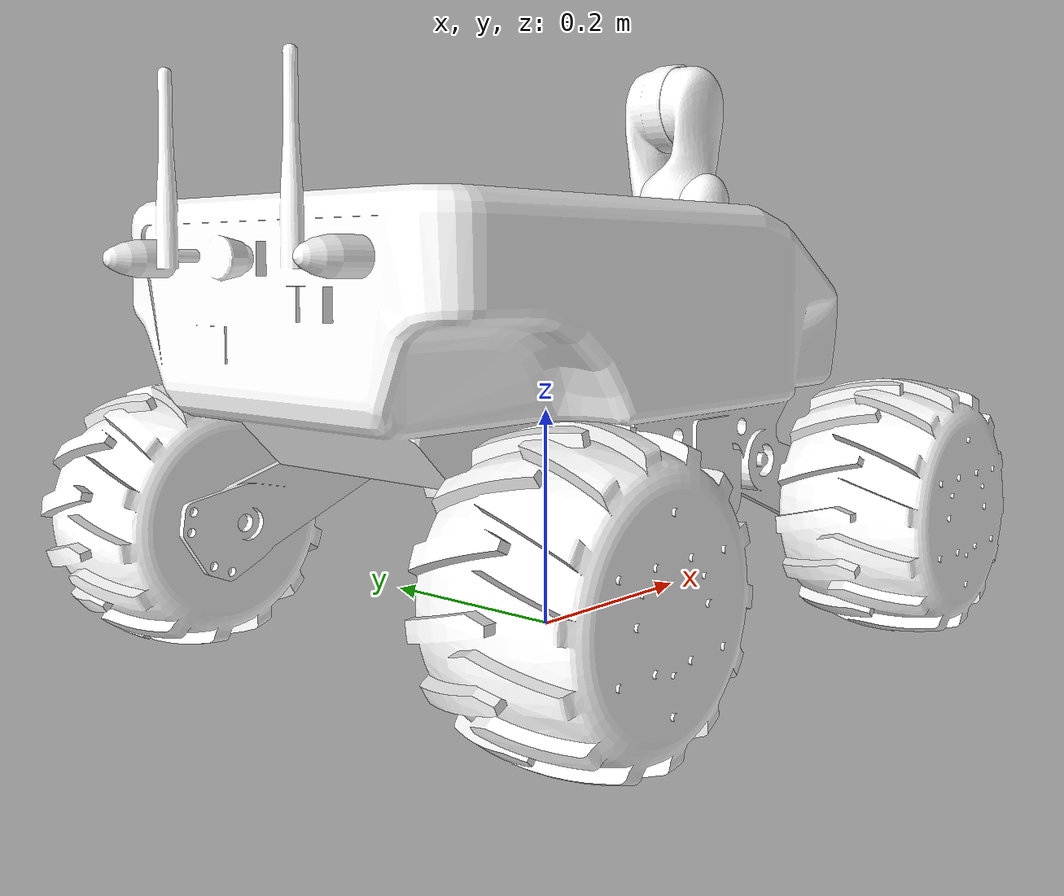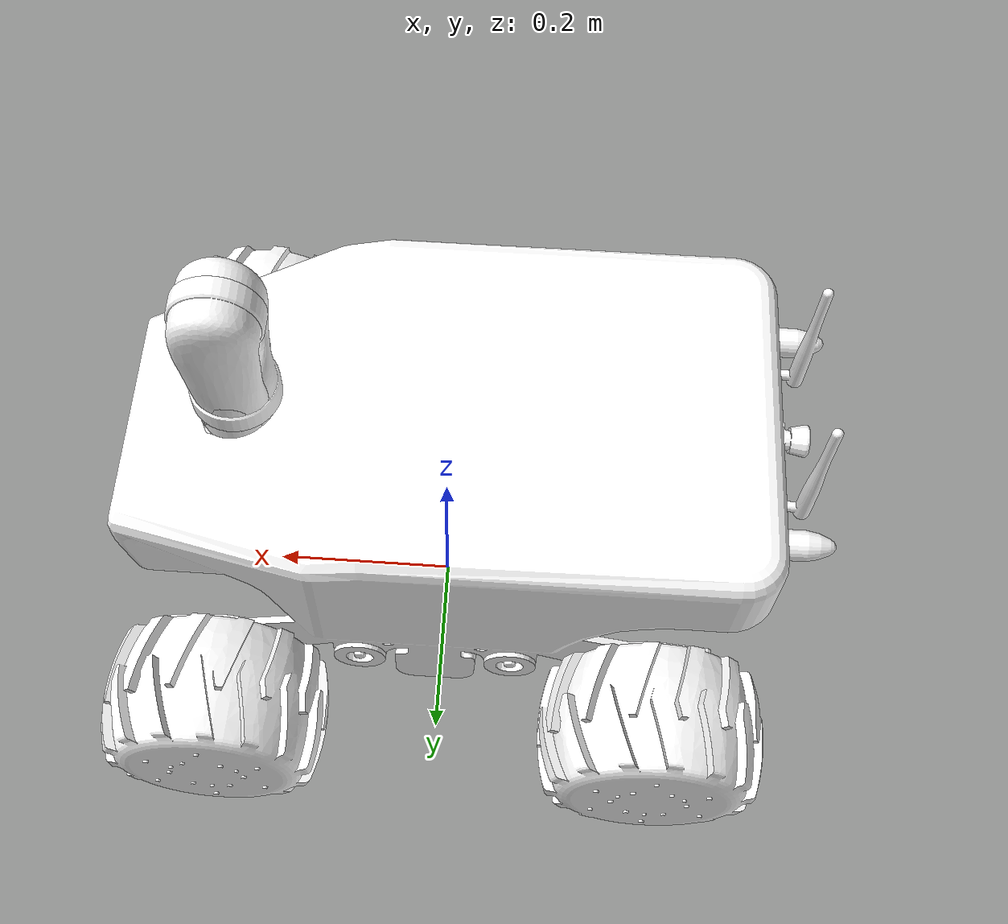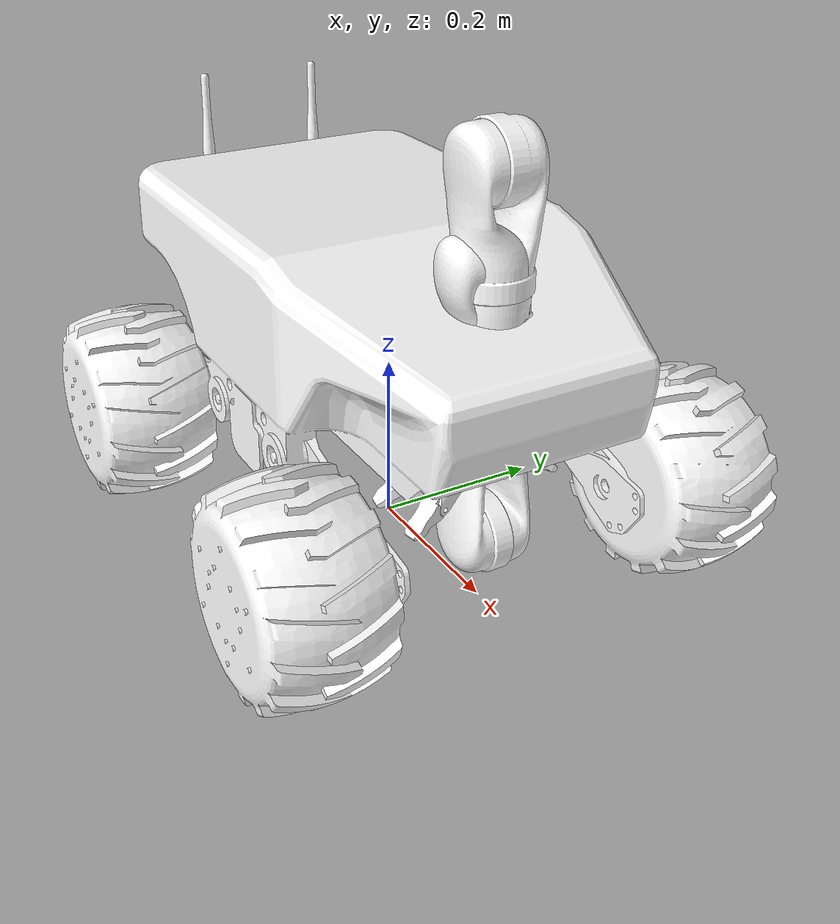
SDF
<sdf version='1.9'>
  <model name='lunalab_summit_xl_gen'>
    <link name='robot_summit_xl_base_footprint'>
      <inertial>
        <pose>-0.02248740267069087 -1.300333043775997e-05 0.2679397160647256 0 0 0</pose>
        <mass>50.467840000000002</mass>
        <inertia>
          <ixx>0.88115438114759082</ixx>
          <ixy>-0.00019287219030404251</ixy>
          <ixz>0.091004230445435486</ixz>
          <iyy>1.767171998090457</iyy>
          <iyz>2.9151916568713389e-05</iyz>
          <izz>1.926810537170516</izz>
        </inertia>
      </inertial>
      <collision name='robot_summit_xl_base_footprint_fixed_joint_lump__robot_summit_xl_base_link_collision'>
        <pose>0 0 0.11 0 0 0</pose>
        <geometry>
          <mesh>
            <scale>1 1 1</scale>
            <uri>meshes/summit_xl/collision/summit_xl_chassis.stl</uri>
          </mesh>
        </geometry>
        <surface>
          <contact>
            <ode/>
          </contact>
          <friction>
            <ode/>
          </friction>
        </surface>
      </collision>
      <collision name='robot_summit_xl_base_footprint_fixed_joint_lump__robot_j2s7s300_link_base_collision_1'>
        <pose>0.204 0 0.22 0 0 0</pose>
        <geometry>
          <mesh>
            <scale>1 1 1</scale>
            <uri>meshes/kinova/collision/base.stl</uri>
          </mesh>
        </geometry>
        <surface>
          <contact>
            <ode/>
          </contact>
          <friction>
            <ode>
              <mu>0.90000000000000002</mu>
              <mu2>0.90000000000000002</mu2>
            </ode>
          </friction>
        </surface>
      </collision>
      <visual name='robot_summit_xl_base_footprint_fixed_joint_lump__robot_summit_xl_base_link_visual'>
        <pose>0 0 0.11 0 0 0</pose>
        <geometry>
          <mesh>
            <scale>1 1 1</scale>
            <uri>meshes/summit_xl/visual/summit_xl_chassis.dae</uri>
          </mesh>
        </geometry>
        <material>
          <diffuse>1 1 1 1</diffuse>
          <specular>1 1 1 1</specular>
          <pbr>
            <metal>
              <albedo_map>materials/textures/summit_xl/chassis_albedo.png</albedo_map>
              <roughness_map>materials/textures/summit_xl/chassis_roughness.png</roughness_map>
              <metalness_map>materials/textures/summit_xl/chassis_metalness.png</metalness_map>
            </metal>
          </pbr>
        </material>
      </visual>
      <visual name='robot_summit_xl_base_footprint_fixed_joint_lump__robot_j2s7s300_link_base_visual_1'>
        <pose>0.204 0 0.22 0 0 0</pose>
        <geometry>
          <mesh>
            <scale>1 1 1</scale>
            <uri>meshes/kinova/visual/base.dae</uri>
          </mesh>
        </geometry>
        <material>
          <diffuse>1 1 1 1</diffuse>
          <specular>1 1 1 1</specular>
          <pbr>
            <metal>
              <albedo_map>materials/textures/kinova/kinova_gen2_albedo.png</albedo_map>
              <roughness_map>materials/textures/kinova/kinova_gen2_roughness.png</roughness_map>
              <metalness_map>materials/textures/kinova/kinova_gen2_metalness.png</metalness_map>
            </metal>
          </pbr>
        </material>
      </visual>
    </link>
    <joint name='robot_j2s7s300_joint_1' type='revolute'>
      <pose relative_to='robot_summit_xl_base_footprint'>0.204 0 0.37675 3.141592653589793 1.224646799147353e-16 3.141592653589793</pose>
      <parent>robot_summit_xl_base_footprint</parent>
      <child>robot_j2s7s300_link_1</child>
      <axis>
        <xyz>0 0 1</xyz>
        <limit>
          <lower>-6.2831853071795862</lower>
          <upper>6.2831853071795862</upper>
          <effort>40</effort>
          <velocity>0.62831853071795862</velocity>
        </limit>
        <dynamics>
          <damping>15</damping>
          <friction>0.5</friction>
          <spring_reference>0</spring_reference>
          <spring_stiffness>0</spring_stiffness>
        </dynamics>
      </axis>
    </joint>
    <link name='robot_j2s7s300_link_1'>
      <pose relative_to='robot_j2s7s300_joint_1'>0 0 0 0 0 0</pose>
      <inertial>
        <pose>0 -0.002 -0.0605 0 0 0</pose>
        <mass>0.74770000000000003</mass>
        <inertia>
          <ixx>0.001520323333333333</ixx>
          <ixy>0</ixy>
          <ixz>0</ixz>
          <iyy>0.001520323333333333</iyy>
          <iyz>0</iyz>
          <izz>0.00059816000000000003</izz>
        </inertia>
      </inertial>
      <collision name='robot_j2s7s300_link_1_collision'>
        <pose>0 0 0 0 0 0</pose>
        <geometry>
          <mesh>
            <scale>1 1 1</scale>
            <uri>meshes/kinova/collision/shoulder.stl</uri>
          </mesh>
        </geometry>
        <surface>
          <contact>
            <ode/>
          </contact>
          <friction>
            <ode>
              <mu>0.90000000000000002</mu>
              <mu2>0.90000000000000002</mu2>
            </ode>
          </friction>
        </surface>
      </collision>
      <visual name='robot_j2s7s300_link_1_visual'>
        <pose>0 0 0 0 0 0</pose>
        <geometry>
          <mesh>
            <scale>1 1 1</scale>
            <uri>meshes/kinova/visual/shoulder.dae</uri>
          </mesh>
        </geometry>
        <material>
          <diffuse>1 1 1 1</diffuse>
          <specular>1 1 1 1</specular>
          <pbr>
            <metal>
              <albedo_map>materials/textures/kinova/kinova_gen2_albedo.png</albedo_map>
              <roughness_map>materials/textures/kinova/kinova_gen2_roughness.png</roughness_map>
              <metalness_map>materials/textures/kinova/kinova_gen2_metalness.png</metalness_map>
            </metal>
          </pbr>
        </material>
      </visual>
    </link>
    <joint name='robot_j2s7s300_joint_2' type='revolute'>
      <pose relative_to='robot_j2s7s300_link_1'>0 0.0016 -0.11875 -1.570796326794896 0 3.141592653589793</pose>
      <parent>robot_j2s7s300_link_1</parent>
      <child>robot_j2s7s300_link_2</child>
      <axis>
        <xyz>0 0 1</xyz>
        <limit>
          <lower>0.82030474843733492</lower>
          <upper>5.4628805587422509</upper>
          <effort>40</effort>
          <velocity>0.62831853071795862</velocity>
        </limit>
        <dynamics>
          <damping>16</damping>
          <friction>0.90000000000000002</friction>
          <spring_reference>0</spring_reference>
          <spring_stiffness>0</spring_stiffness>
        </dynamics>
      </axis>
    </joint>
    <link name='robot_j2s7s300_link_2'>
      <pose relative_to='robot_j2s7s300_joint_2'>0 0 0 0 0 0</pose>
      <inertial>
        <pose>0 -0.103563213 0 0 0 0</pose>
        <mass>0.84470000000000001</mass>
        <inertia>
          <ixx>0.0024707474999999999</ixx>
          <ixy>0</ixy>
          <ixz>0</ixz>
          <iyy>0.00038011499999999999</iyy>
          <iyz>0</iyz>
          <izz>0.0024707474999999999</izz>
        </inertia>
      </inertial>
      <collision name='robot_j2s7s300_link_2_collision'>
        <pose>0 0 0 0 0 0</pose>
        <geometry>
          <mesh>
            <scale>1 1 1</scale>
            <uri>meshes/kinova/collision/arm_half_1.stl</uri>
          </mesh>
        </geometry>
        <surface>
          <contact>
            <ode/>
          </contact>
          <friction>
            <ode>
              <mu>0.90000000000000002</mu>
              <mu2>0.90000000000000002</mu2>
            </ode>
          </friction>
        </surface>
      </collision>
      <visual name='robot_j2s7s300_link_2_visual'>
        <pose>0 0 0 0 0 0</pose>
        <geometry>
          <mesh>
            <scale>1 1 1</scale>
            <uri>meshes/kinova/visual/arm_half_1.dae</uri>
          </mesh>
        </geometry>
        <material>
          <diffuse>1 1 1 1</diffuse>
          <specular>1 1 1 1</specular>
          <pbr>
            <metal>
              <albedo_map>materials/textures/kinova/kinova_gen2_albedo.png</albedo_map>
              <roughness_map>materials/textures/kinova/kinova_gen2_roughness.png</roughness_map>
              <metalness_map>materials/textures/kinova/kinova_gen2_metalness.png</metalness_map>
            </metal>
          </pbr>
        </material>
      </visual>
    </link>
    <joint name='robot_j2s7s300_joint_3' type='revolute'>
      <pose relative_to='robot_j2s7s300_link_2'>0 -0.205 0 -1.570796326794896 0 0</pose>
      <parent>robot_j2s7s300_link_2</parent>
      <child>robot_j2s7s300_link_3</child>
      <axis>
        <xyz>0 0 1</xyz>
        <limit>
          <lower>-6.2831853071795862</lower>
          <upper>6.2831853071795862</upper>
          <effort>40</effort>
          <velocity>0.62831853071795862</velocity>
        </limit>
        <dynamics>
          <damping>12</damping>
          <friction>0.80000000000000004</friction>
          <spring_reference>0</spring_reference>
          <spring_stiffness>0</spring_stiffness>
        </dynamics>
      </axis>
    </joint>
    <link name='robot_j2s7s300_link_3'>
      <pose relative_to='robot_j2s7s300_joint_3'>0 0 0 0 0 0</pose>
      <inertial>
        <pose>0 0 -0.1022447445 0 0 0</pose>
        <mass>0.84470000000000001</mass>
        <inertia>
          <ixx>0.0024707474999999999</ixx>
          <ixy>0</ixy>
          <ixz>0</ixz>
          <iyy>0.0024707474999999999</iyy>
          <iyz>0</iyz>
          <izz>0.00038011499999999999</izz>
        </inertia>
      </inertial>
      <collision name='robot_j2s7s300_link_3_collision'>
        <pose>0 0 0 0 0 0</pose>
        <geometry>
          <mesh>
            <scale>1 1 1</scale>
            <uri>meshes/kinova/collision/arm_half_2.stl</uri>
          </mesh>
        </geometry>
        <surface>
          <contact>
            <ode/>
          </contact>
          <friction>
            <ode>
              <mu>0.90000000000000002</mu>
              <mu2>0.90000000000000002</mu2>
            </ode>
          </friction>
        </surface>
      </collision>
      <visual name='robot_j2s7s300_link_3_visual'>
        <pose>0 0 0 0 0 0</pose>
        <geometry>
          <mesh>
            <scale>1 1 1</scale>
            <uri>meshes/kinova/visual/arm_half_2.dae</uri>
          </mesh>
        </geometry>
        <material>
          <diffuse>1 1 1 1</diffuse>
          <specular>1 1 1 1</specular>
          <pbr>
            <metal>
              <albedo_map>materials/textures/kinova/kinova_gen2_albedo.png</albedo_map>
              <roughness_map>materials/textures/kinova/kinova_gen2_roughness.png</roughness_map>
              <metalness_map>materials/textures/kinova/kinova_gen2_metalness.png</metalness_map>
            </metal>
          </pbr>
        </material>
      </visual>
    </link>
    <joint name='robot_j2s7s300_joint_4' type='revolute'>
      <pose relative_to='robot_j2s7s300_link_3'>0 0 -0.205 1.570796326794896 0 3.141592653589793</pose>
      <parent>robot_j2s7s300_link_3</parent>
      <child>robot_j2s7s300_link_4</child>
      <axis>
        <xyz>0 0 1</xyz>
        <limit>
          <lower>0.52359877559829882</lower>
          <upper>5.7595865315812871</upper>
          <effort>40</effort>
          <velocity>0.62831853071795862</velocity>
        </limit>
        <dynamics>
          <damping>8</damping>
          <friction>0.55000000000000004</friction>
          <spring_reference>0</spring_reference>
          <spring_stiffness>0</spring_stiffness>
        </dynamics>
      </axis>
    </joint>
    <link name='robot_j2s7s300_link_4'>
      <pose relative_to='robot_j2s7s300_joint_4'>0 0 0 0 0 0</pose>
      <inertial>
        <pose>0 0.081 -0.0086 0 0 0</pose>
        <mass>0.67630000000000001</mass>
        <inertia>
          <ixx>0.00142023</ixx>
          <ixy>0</ixy>
          <ixz>0</ixz>
          <iyy>0.00030433499999999998</iyy>
          <iyz>0</iyz>
          <izz>0.00142023</izz>
        </inertia>
      </inertial>
      <collision name='robot_j2s7s300_link_4_collision'>
        <pose>0 0 0 0 0 0</pose>
        <geometry>
          <mesh>
            <scale>1 1 1</scale>
            <uri>meshes/kinova/collision/forearm.stl</uri>
          </mesh>
        </geometry>
        <surface>
          <contact>
            <ode/>
          </contact>
          <friction>
            <ode>
              <mu>0.90000000000000002</mu>
              <mu2>0.90000000000000002</mu2>
            </ode>
          </friction>
        </surface>
      </collision>
      <visual name='robot_j2s7s300_link_4_visual'>
        <pose>0 0 0 0 0 0</pose>
        <geometry>
          <mesh>
            <scale>1 1 1</scale>
            <uri>meshes/kinova/visual/forearm.dae</uri>
          </mesh>
        </geometry>
        <material>
          <diffuse>1 1 1 1</diffuse>
          <specular>1 1 1 1</specular>
          <pbr>
            <metal>
              <albedo_map>materials/textures/kinova/kinova_gen2_albedo.png</albedo_map>
              <roughness_map>materials/textures/kinova/kinova_gen2_roughness.png</roughness_map>
              <metalness_map>materials/textures/kinova/kinova_gen2_metalness.png</metalness_map>
            </metal>
          </pbr>
        </material>
      </visual>
    </link>
    <joint name='robot_j2s7s300_joint_5' type='revolute'>
      <pose relative_to='robot_j2s7s300_link_4'>0 0.2073 -0.0114 -1.570796326794896 0 3.141592653589793</pose>
      <parent>robot_j2s7s300_link_4</parent>
      <child>robot_j2s7s300_link_5</child>
      <axis>
        <xyz>0 0 1</xyz>
        <limit>
          <lower>-6.2831853071795862</lower>
          <upper>6.2831853071795862</upper>
          <effort>20</effort>
          <velocity>0.83775804095727813</velocity>
        </limit>
        <dynamics>
          <damping>6.5</damping>
          <friction>0.34999999999999998</friction>
          <spring_reference>0</spring_reference>
          <spring_stiffness>0</spring_stiffness>
        </dynamics>
      </axis>
    </joint>
    <link name='robot_j2s7s300_link_5'>
      <pose relative_to='robot_j2s7s300_joint_5'>0 0 0 0 0 0</pose>
      <inertial>
        <pose>0 0.0028848942 -0.0541932613 0 0 0</pose>
        <mass>0.46300000000000002</mass>
        <inertia>
          <ixx>0.00043213333333333339</ixx>
          <ixy>0</ixy>
          <ixz>0</ixz>
          <iyy>0.00043213333333333339</iyy>
          <iyz>0</iyz>
          <izz>9.2600000000000015e-05</izz>
        </inertia>
      </inertial>
      <collision name='robot_j2s7s300_link_5_collision'>
        <pose>0 0 0 0 0 0</pose>
        <geometry>
          <mesh>
            <scale>1 1 1</scale>
            <uri>meshes/kinova/collision/wrist_spherical_1.stl</uri>
          </mesh>
        </geometry>
        <surface>
          <contact>
            <ode/>
          </contact>
          <friction>
            <ode>
              <mu>0.90000000000000002</mu>
              <mu2>0.90000000000000002</mu2>
            </ode>
          </friction>
        </surface>
      </collision>
      <visual name='robot_j2s7s300_link_5_visual'>
        <pose>0 0 0 0 0 0</pose>
        <geometry>
          <mesh>
            <scale>1 1 1</scale>
            <uri>meshes/kinova/visual/wrist_spherical_1.dae</uri>
          </mesh>
        </geometry>
        <material>
          <diffuse>1 1 1 1</diffuse>
          <specular>1 1 1 1</specular>
          <pbr>
            <metal>
              <albedo_map>materials/textures/kinova/kinova_gen2_albedo.png</albedo_map>
              <roughness_map>materials/textures/kinova/kinova_gen2_roughness.png</roughness_map>
              <metalness_map>materials/textures/kinova/kinova_gen2_metalness.png</metalness_map>
            </metal>
          </pbr>
        </material>
      </visual>
    </link>
    <joint name='robot_j2s7s300_joint_6' type='revolute'>
      <pose relative_to='robot_j2s7s300_link_5'>0 0 -0.10375 1.570796326794896 0 3.141592653589793</pose>
      <parent>robot_j2s7s300_link_5</parent>
      <child>robot_j2s7s300_link_6</child>
      <axis>
        <xyz>0 0 1</xyz>
        <limit>
          <lower>1.134464013796314</lower>
          <upper>5.1487212933832716</upper>
          <effort>20</effort>
          <velocity>0.83775804095727813</velocity>
        </limit>
        <dynamics>
          <damping>5.5</damping>
          <friction>0.25</friction>
          <spring_reference>0</spring_reference>
          <spring_stiffness>0</spring_stiffness>
        </dynamics>
      </axis>
    </joint>
    <link name='robot_j2s7s300_link_6'>
      <pose relative_to='robot_j2s7s300_joint_6'>0 0 0 0 0 0</pose>
      <inertial>
        <pose>0 0.0497208855 -0.0028562765 0 0 0</pose>
        <mass>0.46300000000000002</mass>
        <inertia>
          <ixx>0.00043213333333333339</ixx>
          <ixy>0</ixy>
          <ixz>0</ixz>
          <iyy>9.2600000000000015e-05</iyy>
          <iyz>0</iyz>
          <izz>0.00043213333333333339</izz>
        </inertia>
      </inertial>
      <collision name='robot_j2s7s300_link_6_collision'>
        <pose>0 0 0 0 0 0</pose>
        <geometry>
          <mesh>
            <scale>1 1 1</scale>
            <uri>meshes/kinova/collision/wrist_spherical_2.stl</uri>
          </mesh>
        </geometry>
        <surface>
          <contact>
            <ode/>
          </contact>
          <friction>
            <ode>
              <mu>0.90000000000000002</mu>
              <mu2>0.90000000000000002</mu2>
            </ode>
          </friction>
        </surface>
      </collision>
      <visual name='robot_j2s7s300_link_6_visual'>
        <pose>0 0 0 0 0 0</pose>
        <geometry>
          <mesh>
            <scale>1 1 1</scale>
            <uri>meshes/kinova/visual/wrist_spherical_2.dae</uri>
          </mesh>
        </geometry>
        <material>
          <diffuse>1 1 1 1</diffuse>
          <specular>1 1 1 1</specular>
          <pbr>
            <metal>
              <albedo_map>materials/textures/kinova/kinova_gen2_albedo.png</albedo_map>
              <roughness_map>materials/textures/kinova/kinova_gen2_roughness.png</roughness_map>
              <metalness_map>materials/textures/kinova/kinova_gen2_metalness.png</metalness_map>
            </metal>
          </pbr>
        </material>
      </visual>
    </link>
    <joint name='robot_j2s7s300_joint_7' type='revolute'>
      <pose relative_to='robot_j2s7s300_link_6'>0 0.10375 0 -1.570796326794896 0 3.141592653589793</pose>
      <parent>robot_j2s7s300_link_6</parent>
      <child>robot_j2s7s300_link_7</child>
      <axis>
        <xyz>0 0 1</xyz>
        <limit>
          <lower>-6.2831853071795862</lower>
          <upper>6.2831853071795862</upper>
          <effort>20</effort>
          <velocity>0.83775804095727813</velocity>
        </limit>
        <dynamics>
          <damping>4.5</damping>
          <friction>0.20000000000000001</friction>
          <spring_reference>0</spring_reference>
          <spring_stiffness>0</spring_stiffness>
        </dynamics>
      </axis>
    </joint>
    <link name='robot_j2s7s300_link_7'>
      <pose relative_to='robot_j2s7s300_joint_7'>0 0 0 0 0 0</pose>
      <inertial>
        <pose>0 0 -0.06 0 0 0</pose>
        <mass>0.98999999999999999</mass>
        <inertia>
          <ixx>0.0003453249999999999</ixx>
          <ixy>0</ixy>
          <ixz>0</ixz>
          <iyy>0.0003453249999999999</iyy>
          <iyz>0</iyz>
          <izz>0.00058159999999999993</izz>
        </inertia>
      </inertial>
      <collision name='robot_j2s7s300_link_7_collision'>
        <pose>0 0 0 0 0 0</pose>
        <geometry>
          <mesh>
            <scale>1 1 1</scale>
            <uri>meshes/kinova/collision/hand_3finger.stl</uri>
          </mesh>
        </geometry>
        <surface>
          <contact>
            <ode/>
          </contact>
          <friction>
            <ode>
              <mu>0.90000000000000002</mu>
              <mu2>0.90000000000000002</mu2>
            </ode>
          </friction>
        </surface>
      </collision>
      <visual name='robot_j2s7s300_link_7_visual'>
        <pose>0 0 0 0 0 0</pose>
        <geometry>
          <mesh>
            <scale>1 1 1</scale>
            <uri>meshes/kinova/visual/hand_3finger.dae</uri>
          </mesh>
        </geometry>
        <material>
          <diffuse>1 1 1 1</diffuse>
          <specular>1 1 1 1</specular>
          <pbr>
            <metal>
              <albedo_map>materials/textures/kinova/kinova_gen2_albedo.png</albedo_map>
              <roughness_map>materials/textures/kinova/kinova_gen2_roughness.png</roughness_map>
              <metalness_map>materials/textures/kinova/kinova_gen2_metalness.png</metalness_map>
            </metal>
          </pbr>
        </material>
      </visual>
    </link>
    <joint name='robot_j2s7s300_joint_finger_1' type='revolute'>
      <pose relative_to='robot_j2s7s300_link_7'>0.002786 0.03126 -0.114668 -1.704955772138421 0.6492624817418906 1.672898088036564</pose>
      <parent>robot_j2s7s300_link_7</parent>
      <child>robot_j2s7s300_link_finger_1</child>
      <axis>
        <xyz>0 0 1</xyz>
        <limit>
          <lower>0</lower>
          <upper>1.51</upper>
          <effort>5</effort>
          <velocity>1</velocity>
        </limit>
        <dynamics>
          <damping>0.29999999999999999</damping>
          <friction>0.01</friction>
          <spring_reference>0</spring_reference>
          <spring_stiffness>0</spring_stiffness>
        </dynamics>
      </axis>
    </joint>
    <link name='robot_j2s7s300_link_finger_1'>
      <pose relative_to='robot_j2s7s300_joint_finger_1'>0 0 0 0 0 0</pose>
      <inertial>
        <pose>0.022 0 0 0 0 0</pose>
        <mass>0.01</mass>
        <inertia>
          <ixx>7.8999999999999995e-07</ixx>
          <ixy>0</ixy>
          <ixz>0</ixz>
          <iyy>7.8999999999999995e-07</iyy>
          <iyz>0</iyz>
          <izz>8.0000000000000002e-08</izz>
        </inertia>
      </inertial>
      <collision name='robot_j2s7s300_link_finger_1_collision'>
        <pose>0 0 0 0 0 0</pose>
        <geometry>
          <mesh>
            <scale>1 1 1</scale>
            <uri>meshes/kinova/collision/finger_proximal.stl</uri>
          </mesh>
        </geometry>
        <surface>
          <contact>
            <ode/>
          </contact>
          <friction>
            <ode>
              <mu>1.6000000000000001</mu>
              <mu2>1.6000000000000001</mu2>
            </ode>
          </friction>
        </surface>
      </collision>
      <visual name='robot_j2s7s300_link_finger_1_visual'>
        <pose>0 0 0 0 0 0</pose>
        <geometry>
          <mesh>
            <scale>1 1 1</scale>
            <uri>meshes/kinova/visual/finger_proximal.dae</uri>
          </mesh>
        </geometry>
        <material>
          <diffuse>1 1 1 1</diffuse>
          <specular>1 1 1 1</specular>
          <pbr>
            <metal>
              <albedo_map>materials/textures/kinova/kinova_gen2_albedo.png</albedo_map>
              <roughness_map>materials/textures/kinova/kinova_gen2_roughness.png</roughness_map>
              <metalness_map>materials/textures/kinova/kinova_gen2_metalness.png</metalness_map>
            </metal>
          </pbr>
        </material>
      </visual>
    </link>
    <joint name='robot_j2s7s300_joint_finger_tip_1' type='revolute'>
      <pose relative_to='robot_j2s7s300_link_finger_1'>0.044 -0.003 0 0 0 0</pose>
      <parent>robot_j2s7s300_link_finger_1</parent>
      <child>robot_j2s7s300_link_finger_tip_1</child>
      <axis>
        <xyz>0 0 1</xyz>
        <limit>
          <lower>0</lower>
          <upper>2</upper>
          <effort>2</effort>
          <velocity>1</velocity>
        </limit>
        <dynamics>
          <damping>0.0050000000000000001</damping>
          <friction>0.00025000000000000001</friction>
          <spring_reference>0</spring_reference>
          <spring_stiffness>1.25</spring_stiffness>
        </dynamics>
      </axis>
      <physics>
        <ode>
          <limit>
            <cfm>0</cfm>
            <erp>0.20000000000000001</erp>
          </limit>
        </ode>
      </physics>
    </joint>
    <link name='robot_j2s7s300_link_finger_tip_1'>
      <pose relative_to='robot_j2s7s300_joint_finger_tip_1'>0 0 0 0 0 0</pose>
      <inertial>
        <pose>0.022 0 0 0 0 0</pose>
        <mass>0.01</mass>
        <inertia>
          <ixx>7.8999999999999995e-07</ixx>
          <ixy>0</ixy>
          <ixz>0</ixz>
          <iyy>7.8999999999999995e-07</iyy>
          <iyz>0</iyz>
          <izz>8.0000000000000002e-08</izz>
        </inertia>
      </inertial>
      <collision name='robot_j2s7s300_link_finger_tip_1_collision'>
        <pose>0 0 0 0 0 0</pose>
        <geometry>
          <mesh>
            <scale>1 1 1</scale>
            <uri>meshes/kinova/collision/finger_distal.stl</uri>
          </mesh>
        </geometry>
        <surface>
          <contact>
            <ode/>
          </contact>
          <friction>
            <ode>
              <mu>1.6000000000000001</mu>
              <mu2>1.6000000000000001</mu2>
            </ode>
          </friction>
        </surface>
      </collision>
      <visual name='robot_j2s7s300_link_finger_tip_1_visual'>
        <pose>0 0 0 0 0 0</pose>
        <geometry>
          <mesh>
            <scale>1 1 1</scale>
            <uri>meshes/kinova/visual/finger_distal.dae</uri>
          </mesh>
        </geometry>
        <material>
          <diffuse>1 1 1 1</diffuse>
          <specular>1 1 1 1</specular>
          <pbr>
            <metal>
              <albedo_map>materials/textures/kinova/kinova_gen2_albedo.png</albedo_map>
              <roughness_map>materials/textures/kinova/kinova_gen2_roughness.png</roughness_map>
              <metalness_map>materials/textures/kinova/kinova_gen2_metalness.png</metalness_map>
            </metal>
          </pbr>
        </material>
      </visual>
      <self_collide>true</self_collide>
    </link>
    <joint name='robot_j2s7s300_joint_finger_2' type='revolute'>
      <pose relative_to='robot_j2s7s300_link_7'>0.022256 -0.027073 -0.114668 -1.570796326794897 0.6492624817418907 -1.386140491933897</pose>
      <parent>robot_j2s7s300_link_7</parent>
      <child>robot_j2s7s300_link_finger_2</child>
      <axis>
        <xyz>0 0 1</xyz>
        <limit>
          <lower>0</lower>
          <upper>1.51</upper>
          <effort>5</effort>
          <velocity>1</velocity>
        </limit>
        <dynamics>
          <damping>0.29999999999999999</damping>
          <friction>0.01</friction>
          <spring_reference>0</spring_reference>
          <spring_stiffness>0</spring_stiffness>
        </dynamics>
      </axis>
    </joint>
    <link name='robot_j2s7s300_link_finger_2'>
      <pose relative_to='robot_j2s7s300_joint_finger_2'>0 0 0 0 0 0</pose>
      <inertial>
        <pose>0.022 0 0 0 0 0</pose>
        <mass>0.01</mass>
        <inertia>
          <ixx>7.8999999999999995e-07</ixx>
          <ixy>0</ixy>
          <ixz>0</ixz>
          <iyy>7.8999999999999995e-07</iyy>
          <iyz>0</iyz>
          <izz>8.0000000000000002e-08</izz>
        </inertia>
      </inertial>
      <collision name='robot_j2s7s300_link_finger_2_collision'>
        <pose>0 0 0 0 0 0</pose>
        <geometry>
          <mesh>
            <scale>1 1 1</scale>
            <uri>meshes/kinova/collision/finger_proximal.stl</uri>
          </mesh>
        </geometry>
        <surface>
          <contact>
            <ode/>
          </contact>
          <friction>
            <ode>
              <mu>1.6000000000000001</mu>
              <mu2>1.6000000000000001</mu2>
            </ode>
          </friction>
        </surface>
      </collision>
      <visual name='robot_j2s7s300_link_finger_2_visual'>
        <pose>0 0 0 0 0 0</pose>
        <geometry>
          <mesh>
            <scale>1 1 1</scale>
            <uri>meshes/kinova/visual/finger_proximal.dae</uri>
          </mesh>
        </geometry>
        <material>
          <diffuse>1 1 1 1</diffuse>
          <specular>1 1 1 1</specular>
          <pbr>
            <metal>
              <albedo_map>materials/textures/kinova/kinova_gen2_albedo.png</albedo_map>
              <roughness_map>materials/textures/kinova/kinova_gen2_roughness.png</roughness_map>
              <metalness_map>materials/textures/kinova/kinova_gen2_metalness.png</metalness_map>
            </metal>
          </pbr>
        </material>
      </visual>
    </link>
    <joint name='robot_j2s7s300_joint_finger_tip_2' type='revolute'>
      <pose relative_to='robot_j2s7s300_link_finger_2'>0.044 -0.003 0 0 0 0</pose>
      <parent>robot_j2s7s300_link_finger_2</parent>
      <child>robot_j2s7s300_link_finger_tip_2</child>
      <axis>
        <xyz>0 0 1</xyz>
        <limit>
          <lower>0</lower>
          <upper>2</upper>
          <effort>2</effort>
          <velocity>1</velocity>
        </limit>
        <dynamics>
          <damping>0.0050000000000000001</damping>
          <friction>0.00025000000000000001</friction>
          <spring_reference>0</spring_reference>
          <spring_stiffness>1.25</spring_stiffness>
        </dynamics>
      </axis>
      <physics>
        <ode>
          <limit>
            <cfm>0</cfm>
            <erp>0.20000000000000001</erp>
          </limit>
        </ode>
      </physics>
    </joint>
    <link name='robot_j2s7s300_link_finger_tip_2'>
      <pose relative_to='robot_j2s7s300_joint_finger_tip_2'>0 0 0 0 0 0</pose>
      <inertial>
        <pose>0.022 0 0 0 0 0</pose>
        <mass>0.01</mass>
        <inertia>
          <ixx>7.8999999999999995e-07</ixx>
          <ixy>0</ixy>
          <ixz>0</ixz>
          <iyy>7.8999999999999995e-07</iyy>
          <iyz>0</iyz>
          <izz>8.0000000000000002e-08</izz>
        </inertia>
      </inertial>
      <collision name='robot_j2s7s300_link_finger_tip_2_collision'>
        <pose>0 0 0 0 0 0</pose>
        <geometry>
          <mesh>
            <scale>1 1 1</scale>
            <uri>meshes/kinova/collision/finger_distal.stl</uri>
          </mesh>
        </geometry>
        <surface>
          <contact>
            <ode/>
          </contact>
          <friction>
            <ode>
              <mu>1.6000000000000001</mu>
              <mu2>1.6000000000000001</mu2>
            </ode>
          </friction>
        </surface>
      </collision>
      <visual name='robot_j2s7s300_link_finger_tip_2_visual'>
        <pose>0 0 0 0 0 0</pose>
        <geometry>
          <mesh>
            <scale>1 1 1</scale>
            <uri>meshes/kinova/visual/finger_distal.dae</uri>
          </mesh>
        </geometry>
        <material>
          <diffuse>1 1 1 1</diffuse>
          <specular>1 1 1 1</specular>
          <pbr>
            <metal>
              <albedo_map>materials/textures/kinova/kinova_gen2_albedo.png</albedo_map>
              <roughness_map>materials/textures/kinova/kinova_gen2_roughness.png</roughness_map>
              <metalness_map>materials/textures/kinova/kinova_gen2_metalness.png</metalness_map>
            </metal>
          </pbr>
        </material>
      </visual>
      <self_collide>true</self_collide>
    </link>
    <joint name='robot_j2s7s300_joint_finger_3' type='revolute'>
      <pose relative_to='robot_j2s7s300_link_7'>-0.022256 -0.027073 -0.114668 -1.570796326794896 0.6492624817418907 -1.755452161655896</pose>
      <parent>robot_j2s7s300_link_7</parent>
      <child>robot_j2s7s300_link_finger_3</child>
      <axis>
        <xyz>0 0 1</xyz>
        <limit>
          <lower>0</lower>
          <upper>1.51</upper>
          <effort>5</effort>
          <velocity>1</velocity>
        </limit>
        <dynamics>
          <damping>0.29999999999999999</damping>
          <friction>0.01</friction>
          <spring_reference>0</spring_reference>
          <spring_stiffness>0</spring_stiffness>
        </dynamics>
      </axis>
    </joint>
    <link name='robot_j2s7s300_link_finger_3'>
      <pose relative_to='robot_j2s7s300_joint_finger_3'>0 0 0 0 0 0</pose>
      <inertial>
        <pose>0.022 0 0 0 0 0</pose>
        <mass>0.01</mass>
        <inertia>
          <ixx>7.8999999999999995e-07</ixx>
          <ixy>0</ixy>
          <ixz>0</ixz>
          <iyy>7.8999999999999995e-07</iyy>
          <iyz>0</iyz>
          <izz>8.0000000000000002e-08</izz>
        </inertia>
      </inertial>
      <collision name='robot_j2s7s300_link_finger_3_collision'>
        <pose>0 0 0 0 0 0</pose>
        <geometry>
          <mesh>
            <scale>1 1 1</scale>
            <uri>meshes/kinova/collision/finger_proximal.stl</uri>
          </mesh>
        </geometry>
        <surface>
          <contact>
            <ode/>
          </contact>
          <friction>
            <ode>
              <mu>1.6000000000000001</mu>
              <mu2>1.6000000000000001</mu2>
            </ode>
          </friction>
        </surface>
      </collision>
      <visual name='robot_j2s7s300_link_finger_3_visual'>
        <pose>0 0 0 0 0 0</pose>
        <geometry>
          <mesh>
            <scale>1 1 1</scale>
            <uri>meshes/kinova/visual/finger_proximal.dae</uri>
          </mesh>
        </geometry>
        <material>
          <diffuse>1 1 1 1</diffuse>
          <specular>1 1 1 1</specular>
          <pbr>
            <metal>
              <albedo_map>materials/textures/kinova/kinova_gen2_albedo.png</albedo_map>
              <roughness_map>materials/textures/kinova/kinova_gen2_roughness.png</roughness_map>
              <metalness_map>materials/textures/kinova/kinova_gen2_metalness.png</metalness_map>
            </metal>
          </pbr>
        </material>
      </visual>
    </link>
    <joint name='robot_j2s7s300_joint_finger_tip_3' type='revolute'>
      <pose relative_to='robot_j2s7s300_link_finger_3'>0.044 -0.003 0 0 0 0</pose>
      <parent>robot_j2s7s300_link_finger_3</parent>
      <child>robot_j2s7s300_link_finger_tip_3</child>
      <axis>
        <xyz>0 0 1</xyz>
        <limit>
          <lower>0</lower>
          <upper>2</upper>
          <effort>2</effort>
          <velocity>1</velocity>
        </limit>
        <dynamics>
          <damping>0.0050000000000000001</damping>
          <friction>0.00025000000000000001</friction>
          <spring_reference>0</spring_reference>
          <spring_stiffness>1.25</spring_stiffness>
        </dynamics>
      </axis>
      <physics>
        <ode>
          <limit>
            <cfm>0</cfm>
            <erp>0.20000000000000001</erp>
          </limit>
        </ode>
      </physics>
    </joint>
    <link name='robot_j2s7s300_link_finger_tip_3'>
      <pose relative_to='robot_j2s7s300_joint_finger_tip_3'>0 0 0 0 0 0</pose>
      <inertial>
        <pose>0.022 0 0 0 0 0</pose>
        <mass>0.01</mass>
        <inertia>
          <ixx>7.8999999999999995e-07</ixx>
          <ixy>0</ixy>
          <ixz>0</ixz>
          <iyy>7.8999999999999995e-07</iyy>
          <iyz>0</iyz>
          <izz>8.0000000000000002e-08</izz>
        </inertia>
      </inertial>
      <collision name='robot_j2s7s300_link_finger_tip_3_collision'>
        <pose>0 0 0 0 0 0</pose>
        <geometry>
          <mesh>
            <scale>1 1 1</scale>
            <uri>meshes/kinova/collision/finger_distal.stl</uri>
          </mesh>
        </geometry>
        <surface>
          <contact>
            <ode/>
          </contact>
          <friction>
            <ode>
              <mu>1.6000000000000001</mu>
              <mu2>1.6000000000000001</mu2>
            </ode>
          </friction>
        </surface>
      </collision>
      <visual name='robot_j2s7s300_link_finger_tip_3_visual'>
        <pose>0 0 0 0 0 0</pose>
        <geometry>
          <mesh>
            <scale>1 1 1</scale>
            <uri>meshes/kinova/visual/finger_distal.dae</uri>
          </mesh>
        </geometry>
        <material>
          <diffuse>1 1 1 1</diffuse>
          <specular>1 1 1 1</specular>
          <pbr>
            <metal>
              <albedo_map>materials/textures/kinova/kinova_gen2_albedo.png</albedo_map>
              <roughness_map>materials/textures/kinova/kinova_gen2_roughness.png</roughness_map>
              <metalness_map>materials/textures/kinova/kinova_gen2_metalness.png</metalness_map>
            </metal>
          </pbr>
        </material>
      </visual>
    </link>
    <joint name='robot_summit_xl_back_left_wheel_joint' type='revolute'>
      <pose relative_to='robot_summit_xl_base_footprint'>-0.229 0.235 0.11 0 0 0</pose>
      <parent>robot_summit_xl_base_footprint</parent>
      <child>robot_summit_xl_back_left_wheel</child>
      <axis>
        <xyz>0 1 0</xyz>
        <limit>
          <effort>100</effort>
          <velocity>100</velocity>
          <lower>-10000000000000000</lower>
          <upper>10000000000000000</upper>
        </limit>
        <dynamics>
          <damping>0.035000000000000003</damping>
          <friction>0.00050000000000000001</friction>
          <spring_reference>0</spring_reference>
          <spring_stiffness>0</spring_stiffness>
        </dynamics>
      </axis>
    </joint>
    <link name='robot_summit_xl_back_left_wheel'>
      <pose relative_to='robot_summit_xl_back_left_wheel_joint'>0 0 0 0 0 0</pose>
      <inertial>
        <pose>0 0 0 0 0 0</pose>
        <mass>6.5</mass>
        <inertia>
          <ixx>0.031850000000000003</ixx>
          <ixy>0</ixy>
          <ixz>0</ixz>
          <iyy>0.039324999999999999</iyy>
          <iyz>0</iyz>
          <izz>0.031850000000000003</izz>
        </inertia>
      </inertial>
      <collision name='robot_summit_xl_back_left_wheel_collision'>
        <pose>0 0 0 1.570796326794896 0 0</pose>
        <geometry>
          <cylinder>
            <length>0.14999999999999999</length>
            <radius>0.11</radius>
          </cylinder>
        </geometry>
        <surface>
          <contact>
            <ode/>
          </contact>
          <friction>
            <ode>
              <mu>1.8999999999999999</mu>
              <mu2>1.7</mu2>
              <fdir1>1 0 0</fdir1>
            </ode>
          </friction>
        </surface>
      </collision>
      <visual name='robot_summit_xl_back_left_wheel_visual'>
        <pose>0 0 0 0 0 0</pose>
        <geometry>
          <mesh>
            <scale>1 1 1</scale>
            <uri>meshes/summit_xl/visual/rubber_wheel_left.dae</uri>
          </mesh>
        </geometry>
        <material>
          <diffuse>1 1 1 1</diffuse>
          <specular>1 1 1 1</specular>
          <pbr>
            <metal>
              <albedo_map>materials/textures/summit_xl/rubber_wheel_albedo.png</albedo_map>
              <normal_map>materials/textures/summit_xl/rubber_wheel_normal.png</normal_map>
              <roughness_map>materials/textures/summit_xl/rubber_wheel_roughness.png</roughness_map>
              <metalness_map>materials/textures/summit_xl/rubber_wheel_metalness.png</metalness_map>
            </metal>
          </pbr>
        </material>
      </visual>
    </link>
    <joint name='robot_summit_xl_back_right_wheel_joint' type='revolute'>
      <pose relative_to='robot_summit_xl_base_footprint'>-0.229 -0.235 0.11 0 0 0</pose>
      <parent>robot_summit_xl_base_footprint</parent>
      <child>robot_summit_xl_back_right_wheel</child>
      <axis>
        <xyz>0 1 0</xyz>
        <limit>
          <effort>100</effort>
          <velocity>100</velocity>
          <lower>-10000000000000000</lower>
          <upper>10000000000000000</upper>
        </limit>
        <dynamics>
          <damping>0.035000000000000003</damping>
          <friction>0.00050000000000000001</friction>
          <spring_reference>0</spring_reference>
          <spring_stiffness>0</spring_stiffness>
        </dynamics>
      </axis>
    </joint>
    <link name='robot_summit_xl_back_right_wheel'>
      <pose relative_to='robot_summit_xl_back_right_wheel_joint'>0 0 0 0 0 0</pose>
      <inertial>
        <pose>0 0 0 0 0 0</pose>
        <mass>6.5</mass>
        <inertia>
          <ixx>0.031850000000000003</ixx>
          <ixy>0</ixy>
          <ixz>0</ixz>
          <iyy>0.039324999999999999</iyy>
          <iyz>0</iyz>
          <izz>0.031850000000000003</izz>
        </inertia>
      </inertial>
      <collision name='robot_summit_xl_back_right_wheel_collision'>
        <pose>0 0 0 1.570796326794896 0 0</pose>
        <geometry>
          <cylinder>
            <length>0.14999999999999999</length>
            <radius>0.11</radius>
          </cylinder>
        </geometry>
        <surface>
          <contact>
            <ode/>
          </contact>
          <friction>
            <ode>
              <mu>1.8999999999999999</mu>
              <mu2>1.7</mu2>
              <fdir1>1 0 0</fdir1>
            </ode>
          </friction>
        </surface>
      </collision>
      <visual name='robot_summit_xl_back_right_wheel_visual'>
        <pose>0 0 0 0 0 0</pose>
        <geometry>
          <mesh>
            <scale>1 1 1</scale>
            <uri>meshes/summit_xl/visual/rubber_wheel_right.dae</uri>
          </mesh>
        </geometry>
        <material>
          <diffuse>1 1 1 1</diffuse>
          <specular>1 1 1 1</specular>
          <pbr>
            <metal>
              <albedo_map>materials/textures/summit_xl/rubber_wheel_albedo.png</albedo_map>
              <normal_map>materials/textures/summit_xl/rubber_wheel_normal.png</normal_map>
              <roughness_map>materials/textures/summit_xl/rubber_wheel_roughness.png</roughness_map>
              <metalness_map>materials/textures/summit_xl/rubber_wheel_metalness.png</metalness_map>
            </metal>
          </pbr>
        </material>
      </visual>
    </link>
    <joint name='robot_summit_xl_front_left_wheel_joint' type='revolute'>
      <pose relative_to='robot_summit_xl_base_footprint'>0.229 0.235 0.11 0 0 0</pose>
      <parent>robot_summit_xl_base_footprint</parent>
      <child>robot_summit_xl_front_left_wheel</child>
      <axis>
        <xyz>0 1 0</xyz>
        <limit>
          <effort>100</effort>
          <velocity>100</velocity>
          <lower>-10000000000000000</lower>
          <upper>10000000000000000</upper>
        </limit>
        <dynamics>
          <damping>0.035000000000000003</damping>
          <friction>0.00050000000000000001</friction>
          <spring_reference>0</spring_reference>
          <spring_stiffness>0</spring_stiffness>
        </dynamics>
      </axis>
    </joint>
    <link name='robot_summit_xl_front_left_wheel'>
      <pose relative_to='robot_summit_xl_front_left_wheel_joint'>0 0 0 0 0 0</pose>
      <inertial>
        <pose>0 0 0 0 0 0</pose>
        <mass>6.5</mass>
        <inertia>
          <ixx>0.031850000000000003</ixx>
          <ixy>0</ixy>
          <ixz>0</ixz>
          <iyy>0.039324999999999999</iyy>
          <iyz>0</iyz>
          <izz>0.031850000000000003</izz>
        </inertia>
      </inertial>
      <collision name='robot_summit_xl_front_left_wheel_collision'>
        <pose>0 0 0 1.570796326794896 0 0</pose>
        <geometry>
          <cylinder>
            <length>0.14999999999999999</length>
            <radius>0.11</radius>
          </cylinder>
        </geometry>
        <surface>
          <contact>
            <ode/>
          </contact>
          <friction>
            <ode>
              <mu>1.8999999999999999</mu>
              <mu2>1.7</mu2>
              <fdir1>1 0 0</fdir1>
            </ode>
          </friction>
        </surface>
      </collision>
      <visual name='robot_summit_xl_front_left_wheel_visual'>
        <pose>0 0 0 0 0 0</pose>
        <geometry>
          <mesh>
            <scale>1 1 1</scale>
            <uri>meshes/summit_xl/visual/rubber_wheel_left.dae</uri>
          </mesh>
        </geometry>
        <material>
          <diffuse>1 1 1 1</diffuse>
          <specular>1 1 1 1</specular>
          <pbr>
            <metal>
              <albedo_map>materials/textures/summit_xl/rubber_wheel_albedo.png</albedo_map>
              <normal_map>materials/textures/summit_xl/rubber_wheel_normal.png</normal_map>
              <roughness_map>materials/textures/summit_xl/rubber_wheel_roughness.png</roughness_map>
              <metalness_map>materials/textures/summit_xl/rubber_wheel_metalness.png</metalness_map>
            </metal>
          </pbr>
        </material>
      </visual>
    </link>
    <joint name='robot_summit_xl_front_right_wheel_joint' type='revolute'>
      <pose relative_to='robot_summit_xl_base_footprint'>0.229 -0.235 0.11 0 0 0</pose>
      <parent>robot_summit_xl_base_footprint</parent>
      <child>robot_summit_xl_front_right_wheel</child>
      <axis>
        <xyz>0 1 0</xyz>
        <limit>
          <effort>100</effort>
          <velocity>100</velocity>
          <lower>-10000000000000000</lower>
          <upper>10000000000000000</upper>
        </limit>
        <dynamics>
          <damping>0.035000000000000003</damping>
          <friction>0.00050000000000000001</friction>
          <spring_reference>0</spring_reference>
          <spring_stiffness>0</spring_stiffness>
        </dynamics>
      </axis>
    </joint>
    <link name='robot_summit_xl_front_right_wheel'>
      <pose relative_to='robot_summit_xl_front_right_wheel_joint'>0 0 0 0 0 0</pose>
      <inertial>
        <pose>0 0 0 0 0 0</pose>
        <mass>6.5</mass>
        <inertia>
          <ixx>0.031850000000000003</ixx>
          <ixy>0</ixy>
          <ixz>0</ixz>
          <iyy>0.039324999999999999</iyy>
          <iyz>0</iyz>
          <izz>0.031850000000000003</izz>
        </inertia>
      </inertial>
      <collision name='robot_summit_xl_front_right_wheel_collision'>
        <pose>0 0 0 1.570796326794896 0 0</pose>
        <geometry>
          <cylinder>
            <length>0.14999999999999999</length>
            <radius>0.11</radius>
          </cylinder>
        </geometry>
        <surface>
          <contact>
            <ode/>
          </contact>
          <friction>
            <ode>
              <mu>1.8999999999999999</mu>
              <mu2>1.7</mu2>
              <fdir1>1 0 0</fdir1>
            </ode>
          </friction>
        </surface>
      </collision>
      <visual name='robot_summit_xl_front_right_wheel_visual'>
        <pose>0 0 0 0 0 0</pose>
        <geometry>
          <mesh>
            <scale>1 1 1</scale>
            <uri>meshes/summit_xl/visual/rubber_wheel_right.dae</uri>
          </mesh>
        </geometry>
        <material>
          <diffuse>1 1 1 1</diffuse>
          <specular>1 1 1 1</specular>
          <pbr>
            <metal>
              <albedo_map>materials/textures/summit_xl/rubber_wheel_albedo.png</albedo_map>
              <normal_map>materials/textures/summit_xl/rubber_wheel_normal.png</normal_map>
              <roughness_map>materials/textures/summit_xl/rubber_wheel_roughness.png</roughness_map>
              <metalness_map>materials/textures/summit_xl/rubber_wheel_metalness.png</metalness_map>
            </metal>
          </pbr>
        </material>
      </visual>
    </link>
    <plugin name='ignition::gazebo::systems::DiffDrive' filename='ignition-gazebo-diff-drive-system'>
      <left_joint>robot_summit_xl_front_left_wheel_joint</left_joint>
      <left_joint>robot_summit_xl_back_left_wheel_joint</left_joint>
      <right_joint>robot_summit_xl_front_right_wheel_joint</right_joint>
      <right_joint>robot_summit_xl_back_right_wheel_joint</right_joint>
      <wheel_separation>0.47</wheel_separation>
      <wheel_radius>0.11</wheel_radius>
    </plugin>
    <plugin name='ign_ros2_control::IgnitionROS2ControlPlugin' filename='ign_ros2_control-system'>
      <parameters>/home/andrej/ws/code/repos/lunalab_summit_xl_gen/install/share/lunalab_summit_xl_gen_moveit_config/config/controllers_effort.yaml</parameters>
    </plugin>
    <static>false</static>
    <plugin name='ignition::gazebo::systems::PosePublisher' filename='ignition-gazebo-pose-publisher-system'>
      <use_pose_vector_msg>true</use_pose_vector_msg>
      <publish_nested_model_pose>true</publish_nested_model_pose>
      <publish_link_pose>false</publish_link_pose>
      <publish_collision_pose>false</publish_collision_pose>
      <publish_visual_pose>false</publish_visual_pose>
    </plugin>
  </model>
</sdf>
